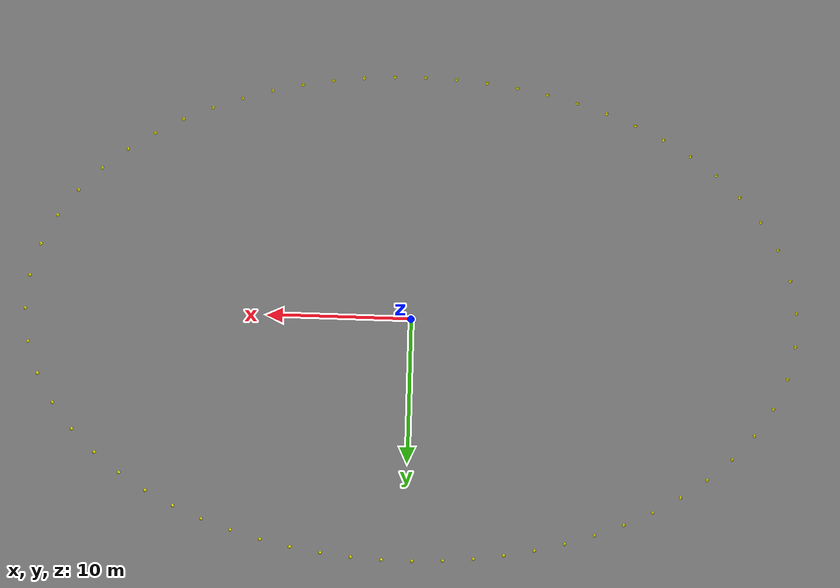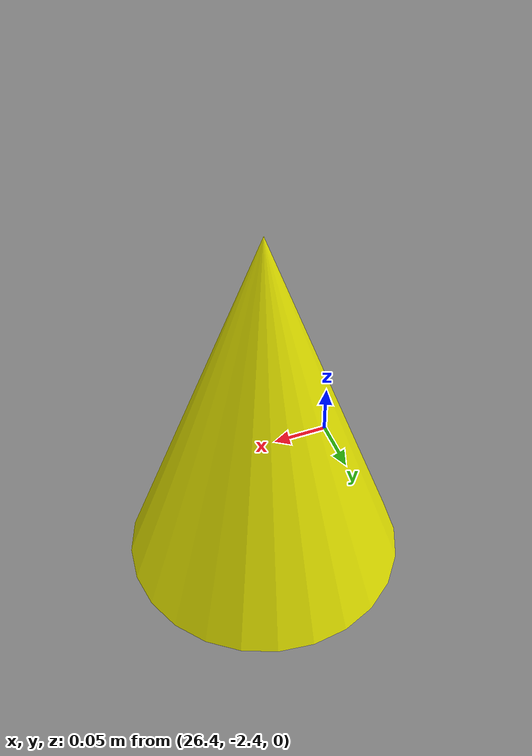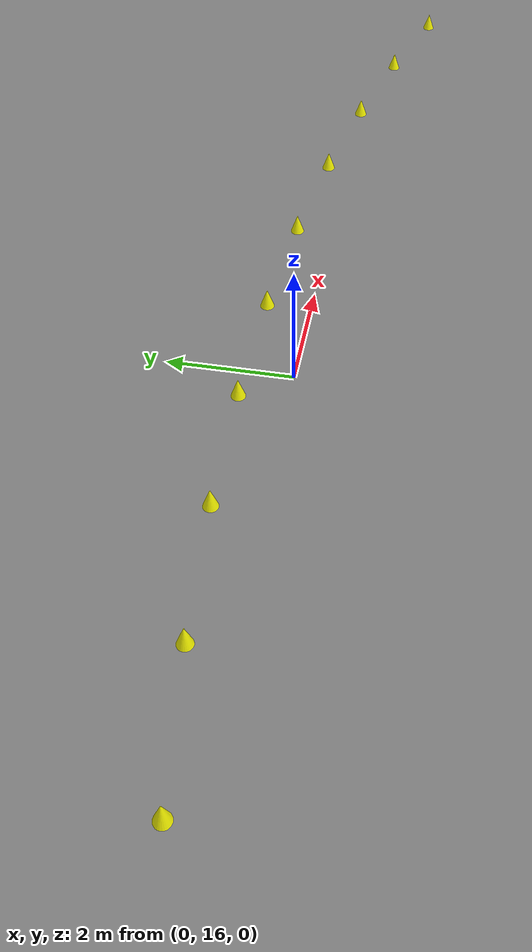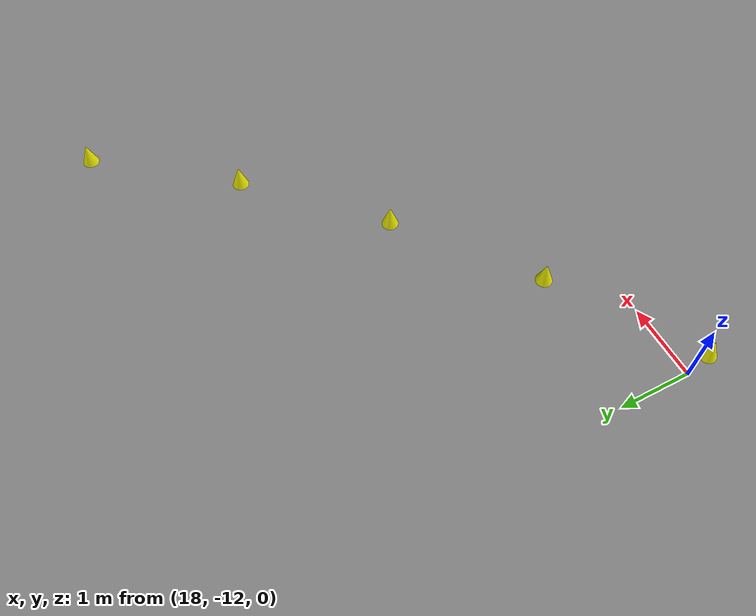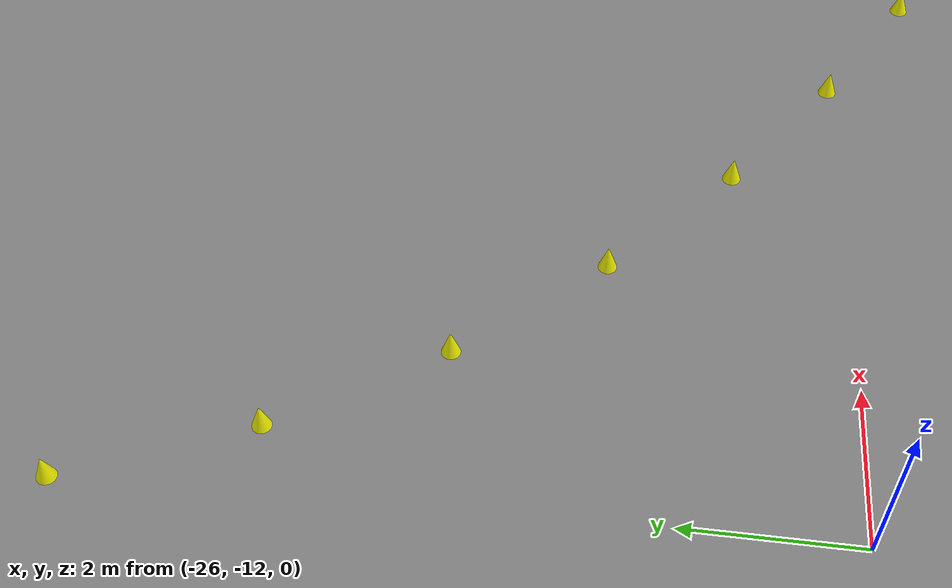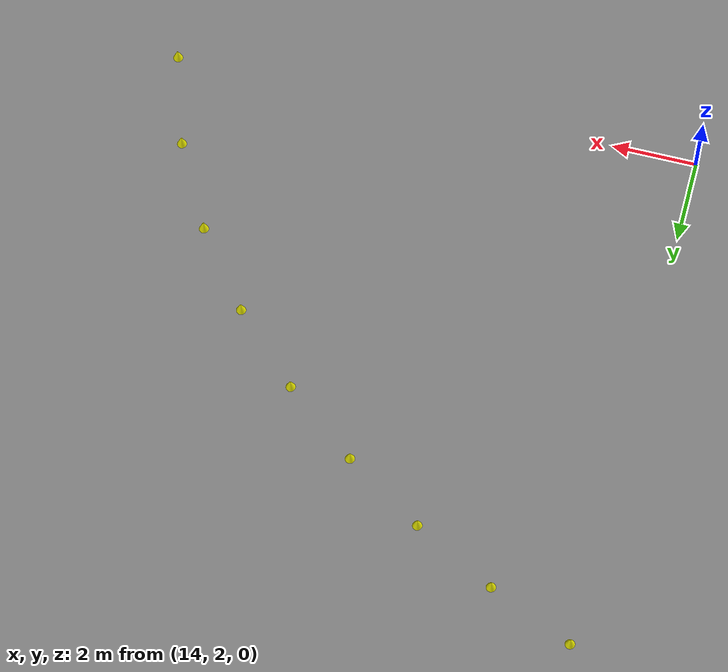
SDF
<sdf version="1.9">
 <world name="fsae_world">
  <plugin filename="gz-sim-physics-system" name="gz::sim::systems::Physics"/>
  <plugin filename="gz-sim-user-commands-system" name="gz::sim::systems::UserCommands"/>
  <plugin filename="gz-sim-scene-broadcaster-system" name="gz::sim::systems::SceneBroadcaster"/>
  <plugin filename="gz-sim-imu-system" name="gz::sim::systems::Imu"/>
  <plugin filename="gz-sim-sensors-system" name="gz::sim::systems::Sensors">
   <render_engine>ogre2</render_engine>
  </plugin>
  <scene><ambient>1.0 1.0 1.0</ambient><background>0.7 0.8 0.9</background></scene>
  <gravity>0 0 -9.81</gravity>
  <physics name="default_physics" type="ode">
   <max_step_size>0.001</max_step_size>
   <real_time_factor>1.0</real_time_factor>
  </physics>
  <light type="directional" name="sun">
   <pose>0 0 50 0 0 0</pose>
   <diffuse>0.9 0.9 0.9 1</diffuse>
   <specular>0.3 0.3 0.3 1</specular>
   <direction>-0.5 0.3 -1.0</direction>
  </light>
  <model name="ground_plane">
   <static>true</static>
   <link name="link">
    <collision name="collision">
     <geometry><plane><normal>0 0 1</normal><size>200 200</size></plane></geometry>
     <surface><friction><ode><mu>1.0</mu><mu2>1.0</mu2></ode></friction></surface>
    </collision>
    <visual name="visual">
     <geometry><plane><normal>0 0 1</normal><size>200 200</size></plane></geometry>
     <material><ambient>0.4 0.4 0.4 1</ambient><diffuse>0.5 0.5 0.5 1</diffuse></material>
    </visual>
   </link>
  </model>
  <include>
   <uri>model://cone_yellow</uri>
   <name>cone_yellow_0</name>
   <pose>26.7500 0.0000 0.1625 0 0 0</pose>
  </include>
  <include>
   <uri>model://cone_yellow</uri>
   <name>cone_yellow_1</name>
   <pose>26.5008 2.2971 0.1625 0 0 0</pose>
  </include>
  <include>
   <uri>model://cone_yellow</uri>
   <name>cone_yellow_2</name>
   <pose>25.7870 4.4845 0.1625 0 0 0</pose>
  </include>
  <include>
   <uri>model://cone_yellow</uri>
   <name>cone_yellow_3</name>
   <pose>24.6896 6.4875 0.1625 0 0 0</pose>
  </include>
  <include>
   <uri>model://cone_yellow</uri>
   <name>cone_yellow_4</name>
   <pose>23.3010 8.2741 0.1625 0 0 0</pose>
  </include>
  <include>
   <uri>model://cone_yellow</uri>
   <name>cone_yellow_5</name>
   <pose>21.7008 9.8427 0.1625 0 0 0</pose>
  </include>
  <include>
   <uri>model://cone_yellow</uri>
   <name>cone_yellow_6</name>
   <pose>19.9490 11.2059 0.1625 0 0 0</pose>
  </include>
  <include>
   <uri>model://cone_yellow</uri>
   <name>cone_yellow_7</name>
   <pose>18.0889 12.3819 0.1625 0 0 0</pose>
  </include>
  <include>
   <uri>model://cone_yellow</uri>
   <name>cone_yellow_8</name>
   <pose>16.1504 13.3887 0.1625 0 0 0</pose>
  </include>
  <include>
   <uri>model://cone_yellow</uri>
   <name>cone_yellow_9</name>
   <pose>14.1547 14.2421 0.1625 0 0 0</pose>
  </include>
  <include>
   <uri>model://cone_yellow</uri>
   <name>cone_yellow_10</name>
   <pose>12.1166 14.9554 0.1625 0 0 0</pose>
  </include>
  <include>
   <uri>model://cone_yellow</uri>
   <name>cone_yellow_11</name>
   <pose>10.0473 15.5393 0.1625 0 0 0</pose>
  </include>
  <include>
   <uri>model://cone_yellow</uri>
   <name>cone_yellow_12</name>
   <pose>7.9549 16.0023 0.1625 0 0 0</pose>
  </include>
  <include>
   <uri>model://cone_yellow</uri>
   <name>cone_yellow_13</name>
   <pose>5.8457 16.3506 0.1625 0 0 0</pose>
  </include>
  <include>
   <uri>model://cone_yellow</uri>
   <name>cone_yellow_14</name>
   <pose>3.7252 16.5890 0.1625 0 0 0</pose>
  </include>
  <include>
   <uri>model://cone_yellow</uri>
   <name>cone_yellow_15</name>
   <pose>1.5977 16.7205 0.1625 0 0 0</pose>
  </include>
  <include>
   <uri>model://cone_yellow</uri>
   <name>cone_yellow_16</name>
   <pose>-0.5327 16.7467 0.1625 0 0 0</pose>
  </include>
  <include>
   <uri>model://cone_yellow</uri>
   <name>cone_yellow_17</name>
   <pose>-2.6621 16.6680 0.1625 0 0 0</pose>
  </include>
  <include>
   <uri>model://cone_yellow</uri>
   <name>cone_yellow_18</name>
   <pose>-4.7866 16.4834 0.1625 0 0 0</pose>
  </include>
  <include>
   <uri>model://cone_yellow</uri>
   <name>cone_yellow_19</name>
   <pose>-6.9020 16.1904 0.1625 0 0 0</pose>
  </include>
  <include>
   <uri>model://cone_yellow</uri>
   <name>cone_yellow_20</name>
   <pose>-9.0035 15.7854 0.1625 0 0 0</pose>
  </include>
  <include>
   <uri>model://cone_yellow</uri>
   <name>cone_yellow_21</name>
   <pose>-11.0853 15.2630 0.1625 0 0 0</pose>
  </include>
  <include>
   <uri>model://cone_yellow</uri>
   <name>cone_yellow_22</name>
   <pose>-13.1402 14.6155 0.1625 0 0 0</pose>
  </include>
  <include>
   <uri>model://cone_yellow</uri>
   <name>cone_yellow_23</name>
   <pose>-15.1586 13.8337 0.1625 0 0 0</pose>
  </include>
  <include>
   <uri>model://cone_yellow</uri>
   <name>cone_yellow_24</name>
   <pose>-17.1280 12.9055 0.1625 0 0 0</pose>
  </include>
  <include>
   <uri>model://cone_yellow</uri>
   <name>cone_yellow_25</name>
   <pose>-19.0304 11.8162 0.1625 0 0 0</pose>
  </include>
  <include>
   <uri>model://cone_yellow</uri>
   <name>cone_yellow_26</name>
   <pose>-20.8408 10.5489 0.1625 0 0 0</pose>
  </include>
  <include>
   <uri>model://cone_yellow</uri>
   <name>cone_yellow_27</name>
   <pose>-22.5231 9.0851 0.1625 0 0 0</pose>
  </include>
  <include>
   <uri>model://cone_yellow</uri>
   <name>cone_yellow_28</name>
   <pose>-24.0263 7.4085 0.1625 0 0 0</pose>
  </include>
  <include>
   <uri>model://cone_yellow</uri>
   <name>cone_yellow_29</name>
   <pose>-25.2804 5.5119 0.1625 0 0 0</pose>
  </include>
  <include>
   <uri>model://cone_yellow</uri>
   <name>cone_yellow_30</name>
   <pose>-26.1976 3.4102 0.1625 0 0 0</pose>
  </include>
  <include>
   <uri>model://cone_yellow</uri>
   <name>cone_yellow_31</name>
   <pose>-26.6870 1.1559 0.1625 0 0 0</pose>
  </include>
  <include>
   <uri>model://cone_yellow</uri>
   <name>cone_yellow_32</name>
   <pose>-26.6870 -1.1559 0.1625 0 0 0</pose>
  </include>
  <include>
   <uri>model://cone_yellow</uri>
   <name>cone_yellow_33</name>
   <pose>-26.1976 -3.4102 0.1625 0 0 0</pose>
  </include>
  <include>
   <uri>model://cone_yellow</uri>
   <name>cone_yellow_34</name>
   <pose>-25.2804 -5.5119 0.1625 0 0 0</pose>
  </include>
  <include>
   <uri>model://cone_yellow</uri>
   <name>cone_yellow_35</name>
   <pose>-24.0263 -7.4085 0.1625 0 0 0</pose>
  </include>
  <include>
   <uri>model://cone_yellow</uri>
   <name>cone_yellow_36</name>
   <pose>-22.5231 -9.0851 0.1625 0 0 0</pose>
  </include>
  <include>
   <uri>model://cone_yellow</uri>
   <name>cone_yellow_37</name>
   <pose>-20.8408 -10.5489 0.1625 0 0 0</pose>
  </include>
  <include>
   <uri>model://cone_yellow</uri>
   <name>cone_yellow_38</name>
   <pose>-19.0304 -11.8162 0.1625 0 0 0</pose>
  </include>
  <include>
   <uri>model://cone_yellow</uri>
   <name>cone_yellow_39</name>
   <pose>-17.1280 -12.9055 0.1625 0 0 0</pose>
  </include>
  <include>
   <uri>model://cone_yellow</uri>
   <name>cone_yellow_40</name>
   <pose>-15.1586 -13.8337 0.1625 0 0 0</pose>
  </include>
  <include>
   <uri>model://cone_yellow</uri>
   <name>cone_yellow_41</name>
   <pose>-13.1402 -14.6155 0.1625 0 0 0</pose>
  </include>
  <include>
   <uri>model://cone_yellow</uri>
   <name>cone_yellow_42</name>
   <pose>-11.0853 -15.2630 0.1625 0 0 0</pose>
  </include>
  <include>
   <uri>model://cone_yellow</uri>
   <name>cone_yellow_43</name>
   <pose>-9.0035 -15.7854 0.1625 0 0 0</pose>
  </include>
  <include>
   <uri>model://cone_yellow</uri>
   <name>cone_yellow_44</name>
   <pose>-6.9020 -16.1904 0.1625 0 0 0</pose>
  </include>
  <include>
   <uri>model://cone_yellow</uri>
   <name>cone_yellow_45</name>
   <pose>-4.7866 -16.4834 0.1625 0 0 0</pose>
  </include>
  <include>
   <uri>model://cone_yellow</uri>
   <name>cone_yellow_46</name>
   <pose>-2.6621 -16.6680 0.1625 0 0 0</pose>
  </include>
  <include>
   <uri>model://cone_yellow</uri>
   <name>cone_yellow_47</name>
   <pose>-0.5327 -16.7467 0.1625 0 0 0</pose>
  </include>
  <include>
   <uri>model://cone_yellow</uri>
   <name>cone_yellow_48</name>
   <pose>1.5977 -16.7205 0.1625 0 0 0</pose>
  </include>
  <include>
   <uri>model://cone_yellow</uri>
   <name>cone_yellow_49</name>
   <pose>3.7252 -16.5890 0.1625 0 0 0</pose>
  </include>
  <include>
   <uri>model://cone_yellow</uri>
   <name>cone_yellow_50</name>
   <pose>5.8457 -16.3506 0.1625 0 0 0</pose>
  </include>
  <include>
   <uri>model://cone_yellow</uri>
   <name>cone_yellow_51</name>
   <pose>7.9549 -16.0023 0.1625 0 0 0</pose>
  </include>
  <include>
   <uri>model://cone_yellow</uri>
   <name>cone_yellow_52</name>
   <pose>10.0473 -15.5393 0.1625 0 0 0</pose>
  </include>
  <include>
   <uri>model://cone_yellow</uri>
   <name>cone_yellow_53</name>
   <pose>12.1166 -14.9554 0.1625 0 0 0</pose>
  </include>
  <include>
   <uri>model://cone_yellow</uri>
   <name>cone_yellow_54</name>
   <pose>14.1547 -14.2421 0.1625 0 0 0</pose>
  </include>
  <include>
   <uri>model://cone_yellow</uri>
   <name>cone_yellow_55</name>
   <pose>16.1504 -13.3887 0.1625 0 0 0</pose>
  </include>
  <include>
   <uri>model://cone_yellow</uri>
   <name>cone_yellow_56</name>
   <pose>18.0889 -12.3819 0.1625 0 0 0</pose>
  </include>
  <include>
   <uri>model://cone_yellow</uri>
   <name>cone_yellow_57</name>
   <pose>19.9490 -11.2059 0.1625 0 0 0</pose>
  </include>
  <include>
   <uri>model://cone_yellow</uri>
   <name>cone_yellow_58</name>
   <pose>21.7008 -9.8427 0.1625 0 0 0</pose>
  </include>
  <include>
   <uri>model://cone_yellow</uri>
   <name>cone_yellow_59</name>
   <pose>23.3010 -8.2741 0.1625 0 0 0</pose>
  </include>
  <include>
   <uri>model://cone_yellow</uri>
   <name>cone_yellow_60</name>
   <pose>24.6896 -6.4875 0.1625 0 0 0</pose>
  </include>
  <include>
   <uri>model://cone_yellow</uri>
   <name>cone_yellow_61</name>
   <pose>25.7870 -4.4845 0.1625 0 0 0</pose>
  </include>
  <include>
   <uri>model://cone_yellow</uri>
   <name>cone_yellow_62</name>
   <pose>26.5008 -2.2971 0.1625 0 0 0</pose>
  </include>
 </world>
</sdf>

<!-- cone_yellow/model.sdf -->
<sdf version="1.9">
  <model name="cone_yellow">
    <static>true</static>
    <link name="link">
      <!-- collision disabled for tuning -->
      <visual name="visual">
        <pose>0 0 -0.1625 0 0 0</pose>
        <geometry>
          <mesh>
            <uri>model://cone_yellow/meshes/cone.stl</uri>
          </mesh>
        </geometry>
        <material>
          <ambient>1.0 1.0 0.0 1</ambient>
          <diffuse>1.0 1.0 0.0 1</diffuse>
          <specular>0.1 0.1 0.1 1</specular>
        </material>
      </visual>
    </link>
  </model>
</sdf>
